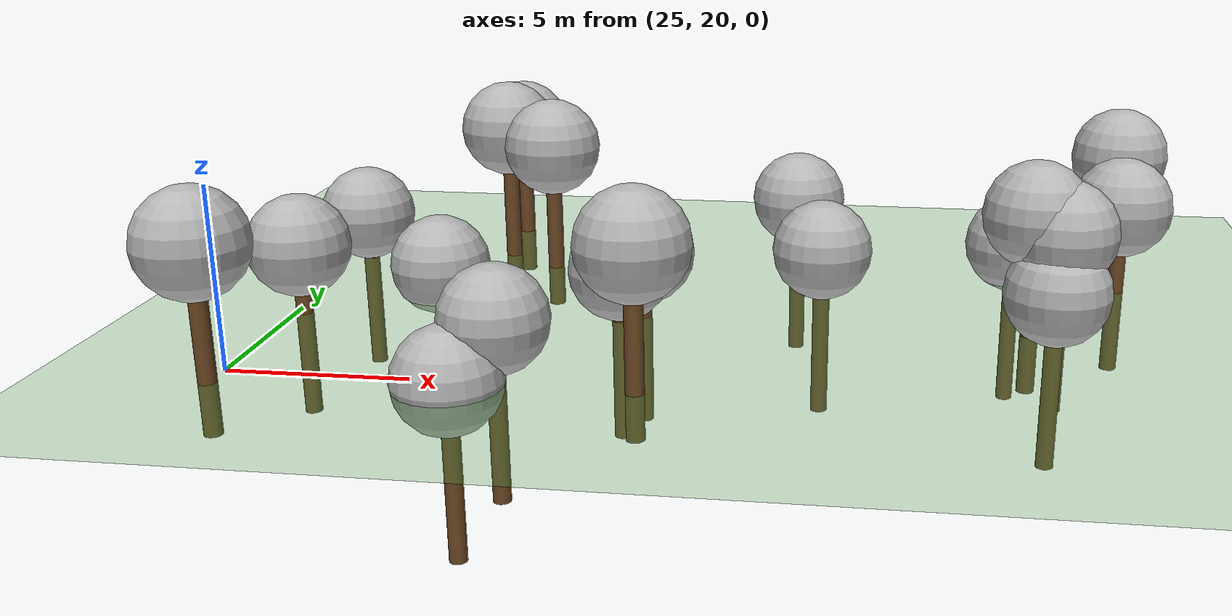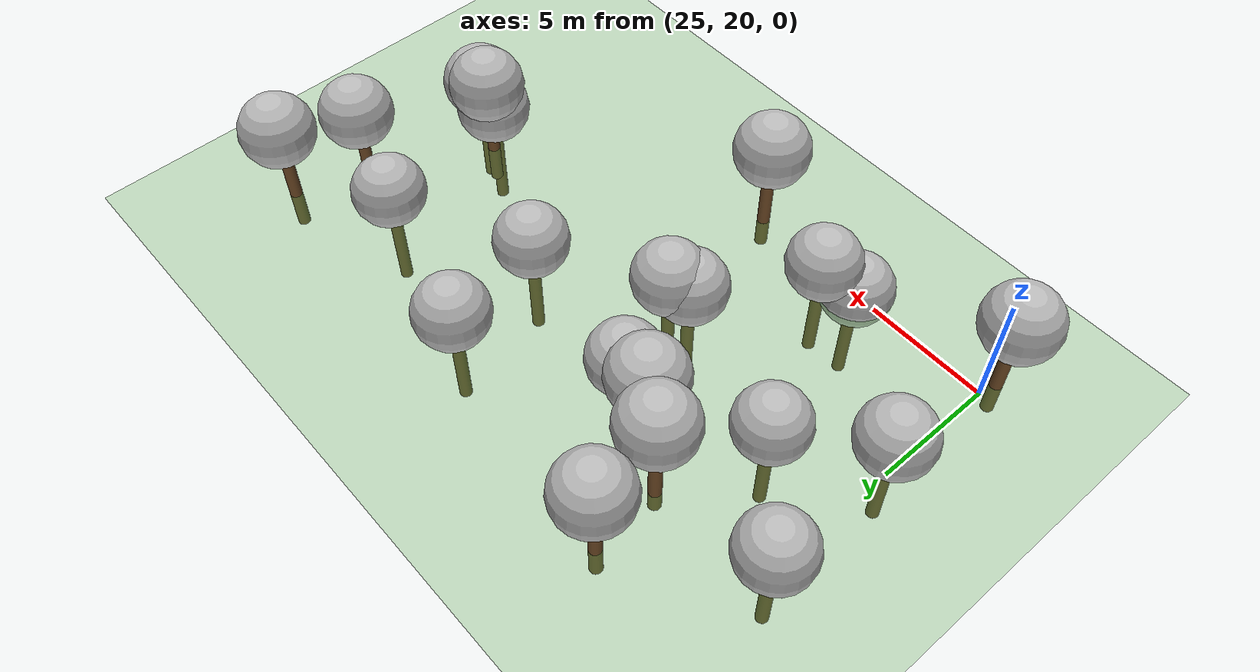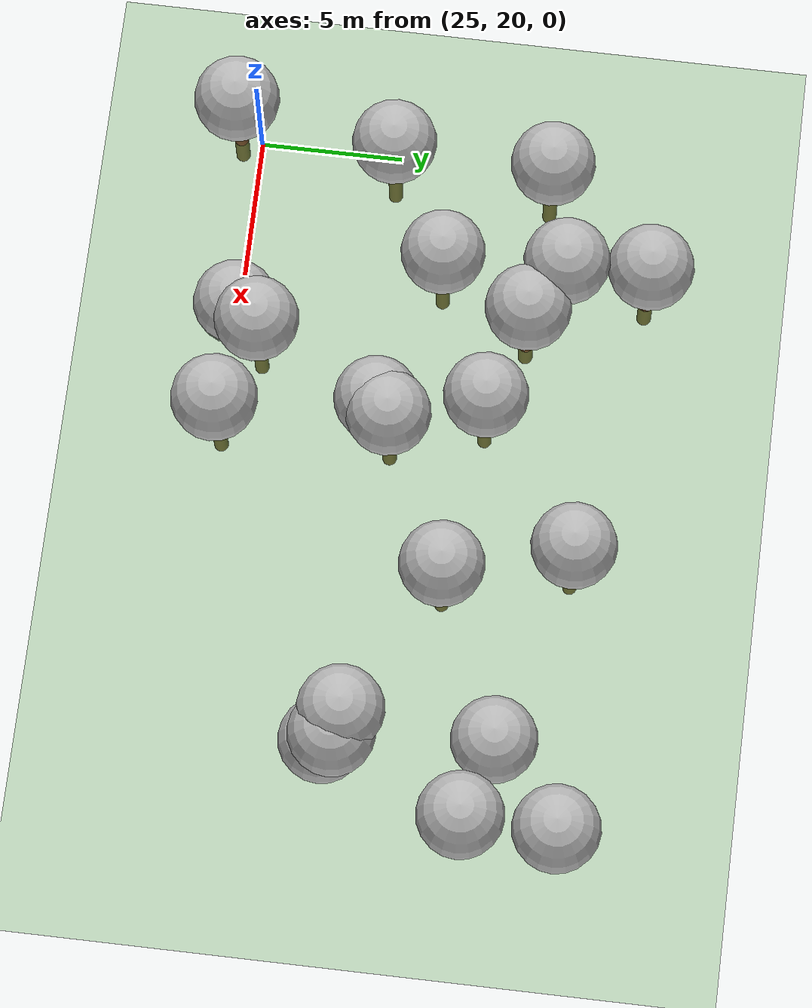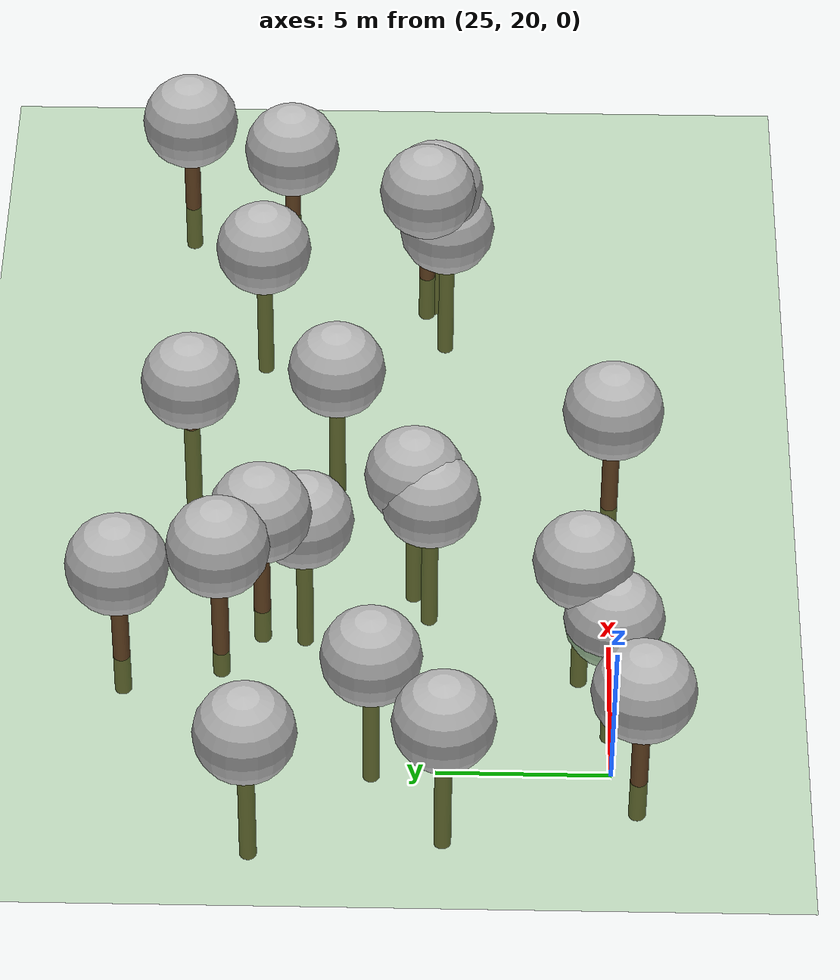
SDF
<sdf version="1.7">
 <world name="default">
  <model name="tree_simple402">
   <static>1</static>
   <link name="link">
    <pose>0 0 0.1 0 -0 0</pose>
    <collision name="collision_trunk">
     <pose>0 0 2 0 -0 0</pose>
     <geometry><cylinder><radius>0.25</radius><length>4</length></cylinder></geometry>
    </collision>
    <collision name="collision_treetop">
     <pose>0 0 5.2 0 -0 0</pose>
     <geometry><sphere><radius>1.5</radius></sphere></geometry>
    </collision>
    <visual name="trunk">
     <pose>0 0 2 0 -0 0</pose>
     <geometry><cylinder><radius>0.25</radius><length>4</length></cylinder></geometry>
     <material>
      <script>
       <uri>model://tree_simple/scripts</uri>
       <uri>model://tree_simple/materials/textures</uri>
       <name>TreeSimple/Trunk</name>
      </script>
     </material>
    </visual>
    <visual name="treetop">
     <pose>0 0 5.2 0 -0 0</pose>
     <geometry><sphere><radius>1.5</radius></sphere></geometry>
     <material>
      <script>
       <uri>model://tree_simple/scripts</uri>
       <uri>model://tree_simple/materials/textures</uri>
       <name>TreeSimple/Treetop</name>
      </script>
     </material>
    </visual>
   </link>
   <pose>46.153 25.5115 -1.80835 0 -0 0</pose>
  </model>
  <model name="tree_simple387">
   <static>1</static>
   <link name="link">
    <pose>0 0 0.1 0 -0 0</pose>
    <collision name="collision_trunk">
     <pose>0 0 2 0 -0 0</pose>
     <geometry><cylinder><radius>0.25</radius><length>4</length></cylinder></geometry>
    </collision>
    <collision name="collision_treetop">
     <pose>0 0 5.2 0 -0 0</pose>
     <geometry><sphere><radius>1.5</radius></sphere></geometry>
    </collision>
    <visual name="trunk">
     <pose>0 0 2 0 -0 0</pose>
     <geometry><cylinder><radius>0.25</radius><length>4</length></cylinder></geometry>
     <material>
      <script>
       <uri>model://tree_simple/scripts</uri>
       <uri>model://tree_simple/materials/textures</uri>
       <name>TreeSimple/Trunk</name>
      </script>
     </material>
    </visual>
    <visual name="treetop">
     <pose>0 0 5.2 0 -0 0</pose>
     <geometry><sphere><radius>1.5</radius></sphere></geometry>
     <material>
      <script>
       <uri>model://tree_simple/scripts</uri>
       <uri>model://tree_simple/materials/textures</uri>
       <name>TreeSimple/Treetop</name>
      </script>
     </material>
    </visual>
   </link>
   <pose>25.1585 24.7807 -3.27603 0 -0 0</pose>
  </model>
  <model name="tree_simple345">
   <static>1</static>
   <link name="link">
    <pose>0 0 0.1 0 -0 0</pose>
    <collision name="collision_trunk">
     <pose>0 0 2 0 -0 0</pose>
     <geometry><cylinder><radius>0.25</radius><length>4</length></cylinder></geometry>
    </collision>
    <collision name="collision_treetop">
     <pose>0 0 5.2 0 -0 0</pose>
     <geometry><sphere><radius>1.5</radius></sphere></geometry>
    </collision>
    <visual name="trunk">
     <pose>0 0 2 0 -0 0</pose>
     <geometry><cylinder><radius>0.25</radius><length>4</length></cylinder></geometry>
     <material>
      <script>
       <uri>model://tree_simple/scripts</uri>
       <uri>model://tree_simple/materials/textures</uri>
       <name>TreeSimple/Trunk</name>
      </script>
     </material>
    </visual>
    <visual name="treetop">
     <pose>0 0 5.2 0 -0 0</pose>
     <geometry><sphere><radius>1.5</radius></sphere></geometry>
     <material>
      <script>
       <uri>model://tree_simple/scripts</uri>
       <uri>model://tree_simple/materials/textures</uri>
       <name>TreeSimple/Treetop</name>
      </script>
     </material>
    </visual>
   </link>
   <pose>28.6629 26.9095 -4.37125 0 -0 0</pose>
  </model>
  <model name="tree_simple335">
   <static>1</static>
   <link name="link">
    <pose>0 0 0.1 0 -0 0</pose>
    <collision name="collision_trunk">
     <pose>0 0 2 0 -0 0</pose>
     <geometry><cylinder><radius>0.25</radius><length>4</length></cylinder></geometry>
    </collision>
    <collision name="collision_treetop">
     <pose>0 0 5.2 0 -0 0</pose>
     <geometry><sphere><radius>1.5</radius></sphere></geometry>
    </collision>
    <visual name="trunk">
     <pose>0 0 2 0 -0 0</pose>
     <geometry><cylinder><radius>0.25</radius><length>4</length></cylinder></geometry>
     <material>
      <script>
       <uri>model://tree_simple/scripts</uri>
       <uri>model://tree_simple/materials/textures</uri>
       <name>TreeSimple/Trunk</name>
      </script>
     </material>
    </visual>
    <visual name="treetop">
     <pose>0 0 5.2 0 -0 0</pose>
     <geometry><sphere><radius>1.5</radius></sphere></geometry>
     <material>
      <script>
       <uri>model://tree_simple/scripts</uri>
       <uri>model://tree_simple/materials/textures</uri>
       <name>TreeSimple/Treetop</name>
      </script>
     </material>
    </visual>
   </link>
   <pose>34.5368 25.2759 -3.77911 0 -0 0</pose>
  </model>
  <model name="tree_simple332">
   <static>1</static>
   <link name="link">
    <pose>0 0 0.1 0 -0 0</pose>
    <collision name="collision_trunk">
     <pose>0 0 2 0 -0 0</pose>
     <geometry><cylinder><radius>0.25</radius><length>4</length></cylinder></geometry>
    </collision>
    <collision name="collision_treetop">
     <pose>0 0 5.2 0 -0 0</pose>
     <geometry><sphere><radius>1.5</radius></sphere></geometry>
    </collision>
    <visual name="trunk">
     <pose>0 0 2 0 -0 0</pose>
     <geometry><cylinder><radius>0.25</radius><length>4</length></cylinder></geometry>
     <material>
      <script>
       <uri>model://tree_simple/scripts</uri>
       <uri>model://tree_simple/materials/textures</uri>
       <name>TreeSimple/Trunk</name>
      </script>
     </material>
    </visual>
    <visual name="treetop">
     <pose>0 0 5.2 0 -0 0</pose>
     <geometry><sphere><radius>1.5</radius></sphere></geometry>
     <material>
      <script>
       <uri>model://tree_simple/scripts</uri>
       <uri>model://tree_simple/materials/textures</uri>
       <name>TreeSimple/Treetop</name>
      </script>
     </material>
    </visual>
   </link>
   <pose>39.1289 32.6367 -3.44443 0 -0 0</pose>
  </model>
  <model name="tree_simple313">
   <static>1</static>
   <link name="link">
    <pose>0 0 0.1 0 -0 0</pose>
    <collision name="collision_trunk">
     <pose>0 0 2 0 -0 0</pose>
     <geometry><cylinder><radius>0.25</radius><length>4</length></cylinder></geometry>
    </collision>
    <collision name="collision_treetop">
     <pose>0 0 5.2 0 -0 0</pose>
     <geometry><sphere><radius>1.5</radius></sphere></geometry>
    </collision>
    <visual name="trunk">
     <pose>0 0 2 0 -0 0</pose>
     <geometry><cylinder><radius>0.25</radius><length>4</length></cylinder></geometry>
     <material>
      <script>
       <uri>model://tree_simple/scripts</uri>
       <uri>model://tree_simple/materials/textures</uri>
       <name>TreeSimple/Trunk</name>
      </script>
     </material>
    </visual>
    <visual name="treetop">
     <pose>0 0 5.2 0 -0 0</pose>
     <geometry><sphere><radius>1.5</radius></sphere></geometry>
     <material>
      <script>
       <uri>model://tree_simple/scripts</uri>
       <uri>model://tree_simple/materials/textures</uri>
       <name>TreeSimple/Treetop</name>
      </script>
     </material>
    </visual>
   </link>
   <pose>25.1047 30.4099 -3.82535 0 -0 0</pose>
  </model>
  <model name="tree_simple294">
   <static>1</static>
   <link name="link">
    <pose>0 0 0.1 0 -0 0</pose>
    <collision name="collision_trunk">
     <pose>0 0 2 0 -0 0</pose>
     <geometry><cylinder><radius>0.25</radius><length>4</length></cylinder></geometry>
    </collision>
    <collision name="collision_treetop">
     <pose>0 0 5.2 0 -0 0</pose>
     <geometry><sphere><radius>1.5</radius></sphere></geometry>
    </collision>
    <visual name="trunk">
     <pose>0 0 2 0 -0 0</pose>
     <geometry><cylinder><radius>0.25</radius><length>4</length></cylinder></geometry>
     <material>
      <script>
       <uri>model://tree_simple/scripts</uri>
       <uri>model://tree_simple/materials/textures</uri>
       <name>TreeSimple/Trunk</name>
      </script>
     </material>
    </visual>
    <visual name="treetop">
     <pose>0 0 5.2 0 -0 0</pose>
     <geometry><sphere><radius>1.5</radius></sphere></geometry>
     <material>
      <script>
       <uri>model://tree_simple/scripts</uri>
       <uri>model://tree_simple/materials/textures</uri>
       <name>TreeSimple/Treetop</name>
      </script>
     </material>
    </visual>
   </link>
   <pose>29.4568 34.1995 -1.54985 0 -0 0</pose>
  </model>
  <model name="tree_simple266">
   <static>1</static>
   <link name="link">
    <pose>0 0 0.1 0 -0 0</pose>
    <collision name="collision_trunk">
     <pose>0 0 2 0 -0 0</pose>
     <geometry><cylinder><radius>0.25</radius><length>4</length></cylinder></geometry>
    </collision>
    <collision name="collision_treetop">
     <pose>0 0 5.2 0 -0 0</pose>
     <geometry><sphere><radius>1.5</radius></sphere></geometry>
    </collision>
    <visual name="trunk">
     <pose>0 0 2 0 -0 0</pose>
     <geometry><cylinder><radius>0.25</radius><length>4</length></cylinder></geometry>
     <material>
      <script>
       <uri>model://tree_simple/scripts</uri>
       <uri>model://tree_simple/materials/textures</uri>
       <name>TreeSimple/Trunk</name>
      </script>
     </material>
    </visual>
    <visual name="treetop">
     <pose>0 0 5.2 0 -0 0</pose>
     <geometry><sphere><radius>1.5</radius></sphere></geometry>
     <material>
      <script>
       <uri>model://tree_simple/scripts</uri>
       <uri>model://tree_simple/materials/textures</uri>
       <name>TreeSimple/Treetop</name>
      </script>
     </material>
    </visual>
   </link>
   <pose>24.8758 19.2237 -1.59328 0 -0 0</pose>
  </model>
  <model name="tree_simple265">
   <static>1</static>
   <link name="link">
    <pose>0 0 0.1 0 -0 0</pose>
    <collision name="collision_trunk">
     <pose>0 0 2 0 -0 0</pose>
     <geometry><cylinder><radius>0.25</radius><length>4</length></cylinder></geometry>
    </collision>
    <collision name="collision_treetop">
     <pose>0 0 5.2 0 -0 0</pose>
     <geometry><sphere><radius>1.5</radius></sphere></geometry>
    </collision>
    <visual name="trunk">
     <pose>0 0 2 0 -0 0</pose>
     <geometry><cylinder><radius>0.25</radius><length>4</length></cylinder></geometry>
     <material>
      <script>
       <uri>model://tree_simple/scripts</uri>
       <uri>model://tree_simple/materials/textures</uri>
       <name>TreeSimple/Trunk</name>
      </script>
     </material>
    </visual>
    <visual name="treetop">
     <pose>0 0 5.2 0 -0 0</pose>
     <geometry><sphere><radius>1.5</radius></sphere></geometry>
     <material>
      <script>
       <uri>model://tree_simple/scripts</uri>
       <uri>model://tree_simple/materials/textures</uri>
       <name>TreeSimple/Treetop</name>
      </script>
     </material>
    </visual>
   </link>
   <pose>49.0906 29.8666 -2.66713 0 -0 0</pose>
  </model>
  <model name="tree_simple238">
   <static>1</static>
   <link name="link">
    <pose>0 0 0.1 0 -0 0</pose>
    <collision name="collision_trunk">
     <pose>0 0 2 0 -0 0</pose>
     <geometry><cylinder><radius>0.25</radius><length>4</length></cylinder></geometry>
    </collision>
    <collision name="collision_treetop">
     <pose>0 0 5.2 0 -0 0</pose>
     <geometry><sphere><radius>1.5</radius></sphere></geometry>
    </collision>
    <visual name="trunk">
     <pose>0 0 2 0 -0 0</pose>
     <geometry><cylinder><radius>0.25</radius><length>4</length></cylinder></geometry>
     <material>
      <script>
       <uri>model://tree_simple/scripts</uri>
       <uri>model://tree_simple/materials/textures</uri>
       <name>TreeSimple/Trunk</name>
      </script>
     </material>
    </visual>
    <visual name="treetop">
     <pose>0 0 5.2 0 -0 0</pose>
     <geometry><sphere><radius>1.5</radius></sphere></geometry>
     <material>
      <script>
       <uri>model://tree_simple/scripts</uri>
       <uri>model://tree_simple/materials/textures</uri>
       <name>TreeSimple/Treetop</name>
      </script>
     </material>
    </visual>
   </link>
   <pose>46.8869 25.2835 -2.26756 0 -0 0</pose>
  </model>
  <model name="tree_simple230">
   <static>1</static>
   <link name="link">
    <pose>0 0 0.1 0 -0 0</pose>
    <collision name="collision_trunk">
     <pose>0 0 2 0 -0 0</pose>
     <geometry><cylinder><radius>0.25</radius><length>4</length></cylinder></geometry>
    </collision>
    <collision name="collision_treetop">
     <pose>0 0 5.2 0 -0 0</pose>
     <geometry><sphere><radius>1.5</radius></sphere></geometry>
    </collision>
    <visual name="trunk">
     <pose>0 0 2 0 -0 0</pose>
     <geometry><cylinder><radius>0.25</radius><length>4</length></cylinder></geometry>
     <material>
      <script>
       <uri>model://tree_simple/scripts</uri>
       <uri>model://tree_simple/materials/textures</uri>
       <name>TreeSimple/Trunk</name>
      </script>
     </material>
    </visual>
    <visual name="treetop">
     <pose>0 0 5.2 0 -0 0</pose>
     <geometry><sphere><radius>1.5</radius></sphere></geometry>
     <material>
      <script>
       <uri>model://tree_simple/scripts</uri>
       <uri>model://tree_simple/materials/textures</uri>
       <name>TreeSimple/Treetop</name>
      </script>
     </material>
    </visual>
   </link>
   <pose>49.384 33.0887 -1.79699 0 -0 0</pose>
  </model>
  <model name="tree_simple219">
   <static>1</static>
   <link name="link">
    <pose>0 0 0.1 0 -0 0</pose>
    <collision name="collision_trunk">
     <pose>0 0 2 0 -0 0</pose>
     <geometry><cylinder><radius>0.25</radius><length>4</length></cylinder></geometry>
    </collision>
    <collision name="collision_treetop">
     <pose>0 0 5.2 0 -0 0</pose>
     <geometry><sphere><radius>1.5</radius></sphere></geometry>
    </collision>
    <visual name="trunk">
     <pose>0 0 2 0 -0 0</pose>
     <geometry><cylinder><radius>0.25</radius><length>4</length></cylinder></geometry>
     <material>
      <script>
       <uri>model://tree_simple/scripts</uri>
       <uri>model://tree_simple/materials/textures</uri>
       <name>TreeSimple/Trunk</name>
      </script>
     </material>
    </visual>
    <visual name="treetop">
     <pose>0 0 5.2 0 -0 0</pose>
     <geometry><sphere><radius>1.5</radius></sphere></geometry>
     <material>
      <script>
       <uri>model://tree_simple/scripts</uri>
       <uri>model://tree_simple/materials/textures</uri>
       <name>TreeSimple/Treetop</name>
      </script>
     </material>
    </visual>
   </link>
   <pose>32.0899 20.7584 -3.81736 0 -0 0</pose>
  </model>
  <model name="tree_simple216">
   <static>1</static>
   <link name="link">
    <pose>0 0 0.1 0 -0 0</pose>
    <collision name="collision_trunk">
     <pose>0 0 2 0 -0 0</pose>
     <geometry><cylinder><radius>0.25</radius><length>4</length></cylinder></geometry>
    </collision>
    <collision name="collision_treetop">
     <pose>0 0 5.2 0 -0 0</pose>
     <geometry><sphere><radius>1.5</radius></sphere></geometry>
    </collision>
    <visual name="trunk">
     <pose>0 0 2 0 -0 0</pose>
     <geometry><cylinder><radius>0.25</radius><length>4</length></cylinder></geometry>
     <material>
      <script>
       <uri>model://tree_simple/scripts</uri>
       <uri>model://tree_simple/materials/textures</uri>
       <name>TreeSimple/Trunk</name>
      </script>
     </material>
    </visual>
    <visual name="treetop">
     <pose>0 0 5.2 0 -0 0</pose>
     <geometry><sphere><radius>1.5</radius></sphere></geometry>
     <material>
      <script>
       <uri>model://tree_simple/scripts</uri>
       <uri>model://tree_simple/materials/textures</uri>
       <name>TreeSimple/Treetop</name>
      </script>
     </material>
    </visual>
   </link>
   <pose>46.7848 24.9057 -3.85549 0 -0 0</pose>
  </model>
  <model name="tree_simple190">
   <static>1</static>
   <link name="link">
    <pose>0 0 0.1 0 -0 0</pose>
    <collision name="collision_trunk">
     <pose>0 0 2 0 -0 0</pose>
     <geometry><cylinder><radius>0.25</radius><length>4</length></cylinder></geometry>
    </collision>
    <collision name="collision_treetop">
     <pose>0 0 5.2 0 -0 0</pose>
     <geometry><sphere><radius>1.5</radius></sphere></geometry>
    </collision>
    <visual name="trunk">
     <pose>0 0 2 0 -0 0</pose>
     <geometry><cylinder><radius>0.25</radius><length>4</length></cylinder></geometry>
     <material>
      <script>
       <uri>model://tree_simple/scripts</uri>
       <uri>model://tree_simple/materials/textures</uri>
       <name>TreeSimple/Trunk</name>
      </script>
     </material>
    </visual>
    <visual name="treetop">
     <pose>0 0 5.2 0 -0 0</pose>
     <geometry><sphere><radius>1.5</radius></sphere></geometry>
     <material>
      <script>
       <uri>model://tree_simple/scripts</uri>
       <uri>model://tree_simple/materials/textures</uri>
       <name>TreeSimple/Treetop</name>
      </script>
     </material>
    </visual>
   </link>
   <pose>33.8682 29.0193 -4.06375 0 -0 0</pose>
  </model>
  <model name="tree_simple188">
   <static>1</static>
   <link name="link">
    <pose>0 0 0.1 0 -0 0</pose>
    <collision name="collision_trunk">
     <pose>0 0 2 0 -0 0</pose>
     <geometry><cylinder><radius>0.25</radius><length>4</length></cylinder></geometry>
    </collision>
    <collision name="collision_treetop">
     <pose>0 0 5.2 0 -0 0</pose>
     <geometry><sphere><radius>1.5</radius></sphere></geometry>
    </collision>
    <visual name="trunk">
     <pose>0 0 2 0 -0 0</pose>
     <geometry><cylinder><radius>0.25</radius><length>4</length></cylinder></geometry>
     <material>
      <script>
       <uri>model://tree_simple/scripts</uri>
       <uri>model://tree_simple/materials/textures</uri>
       <name>TreeSimple/Trunk</name>
      </script>
     </material>
    </visual>
    <visual name="treetop">
     <pose>0 0 5.2 0 -0 0</pose>
     <geometry><sphere><radius>1.5</radius></sphere></geometry>
     <material>
      <script>
       <uri>model://tree_simple/scripts</uri>
       <uri>model://tree_simple/materials/textures</uri>
       <name>TreeSimple/Treetop</name>
      </script>
     </material>
    </visual>
   </link>
   <pose>31.0766 19.8232 -5.18682 0 -0 0</pose>
  </model>
  <model name="tree_simple150">
   <static>1</static>
   <link name="link">
    <pose>0 0 0.1 0 -0 0</pose>
    <collision name="collision_trunk">
     <pose>0 0 2 0 -0 0</pose>
     <geometry><cylinder><radius>0.25</radius><length>4</length></cylinder></geometry>
    </collision>
    <collision name="collision_treetop">
     <pose>0 0 5.2 0 -0 0</pose>
     <geometry><sphere><radius>1.5</radius></sphere></geometry>
    </collision>
    <visual name="trunk">
     <pose>0 0 2 0 -0 0</pose>
     <geometry><cylinder><radius>0.25</radius><length>4</length></cylinder></geometry>
     <material>
      <script>
       <uri>model://tree_simple/scripts</uri>
       <uri>model://tree_simple/materials/textures</uri>
       <name>TreeSimple/Trunk</name>
      </script>
     </material>
    </visual>
    <visual name="treetop">
     <pose>0 0 5.2 0 -0 0</pose>
     <geometry><sphere><radius>1.5</radius></sphere></geometry>
     <material>
      <script>
       <uri>model://tree_simple/scripts</uri>
       <uri>model://tree_simple/materials/textures</uri>
       <name>TreeSimple/Treetop</name>
      </script>
     </material>
    </visual>
   </link>
   <pose>40.1656 28.2074 -3.86341 0 -0 0</pose>
  </model>
  <model name="tree_simple131">
   <static>1</static>
   <link name="link">
    <pose>0 0 0.1 0 -0 0</pose>
    <collision name="collision_trunk">
     <pose>0 0 2 0 -0 0</pose>
     <geometry><cylinder><radius>0.25</radius><length>4</length></cylinder></geometry>
    </collision>
    <collision name="collision_treetop">
     <pose>0 0 5.2 0 -0 0</pose>
     <geometry><sphere><radius>1.5</radius></sphere></geometry>
    </collision>
    <visual name="trunk">
     <pose>0 0 2 0 -0 0</pose>
     <geometry><cylinder><radius>0.25</radius><length>4</length></cylinder></geometry>
     <material>
      <script>
       <uri>model://tree_simple/scripts</uri>
       <uri>model://tree_simple/materials/textures</uri>
       <name>TreeSimple/Trunk</name>
      </script>
     </material>
    </visual>
    <visual name="treetop">
     <pose>0 0 5.2 0 -0 0</pose>
     <geometry><sphere><radius>1.5</radius></sphere></geometry>
     <material>
      <script>
       <uri>model://tree_simple/scripts</uri>
       <uri>model://tree_simple/materials/textures</uri>
       <name>TreeSimple/Treetop</name>
      </script>
     </material>
    </visual>
   </link>
   <pose>46.0345 30.6775 -4.15508 0 -0 0</pose>
  </model>
  <model name="tree_simple97">
   <static>1</static>
   <link name="link">
    <pose>0 0 0.1 0 -0 0</pose>
    <collision name="collision_trunk">
     <pose>0 0 2 0 -0 0</pose>
     <geometry><cylinder><radius>0.25</radius><length>4</length></cylinder></geometry>
    </collision>
    <collision name="collision_treetop">
     <pose>0 0 5.2 0 -0 0</pose>
     <geometry><sphere><radius>1.5</radius></sphere></geometry>
    </collision>
    <visual name="trunk">
     <pose>0 0 2 0 -0 0</pose>
     <geometry><cylinder><radius>0.25</radius><length>4</length></cylinder></geometry>
     <material>
      <script>
       <uri>model://tree_simple/scripts</uri>
       <uri>model://tree_simple/materials/textures</uri>
       <name>TreeSimple/Trunk</name>
      </script>
     </material>
    </visual>
    <visual name="treetop">
     <pose>0 0 5.2 0 -0 0</pose>
     <geometry><sphere><radius>1.5</radius></sphere></geometry>
     <material>
      <script>
       <uri>model://tree_simple/scripts</uri>
       <uri>model://tree_simple/materials/textures</uri>
       <name>TreeSimple/Treetop</name>
      </script>
     </material>
    </visual>
   </link>
   <pose>31.4552 30.1711 -1.37931 0 -0 0</pose>
  </model>
  <model name="tree_simple47">
   <static>1</static>
   <link name="link">
    <pose>0 0 0.1 0 -0 0</pose>
    <collision name="collision_trunk">
     <pose>0 0 2 0 -0 0</pose>
     <geometry><cylinder><radius>0.25</radius><length>4</length></cylinder></geometry>
    </collision>
    <collision name="collision_treetop">
     <pose>0 0 5.2 0 -0 0</pose>
     <geometry><sphere><radius>1.5</radius></sphere></geometry>
    </collision>
    <visual name="trunk">
     <pose>0 0 2 0 -0 0</pose>
     <geometry><cylinder><radius>0.25</radius><length>4</length></cylinder></geometry>
     <material>
      <script>
       <uri>model://tree_simple/scripts</uri>
       <uri>model://tree_simple/materials/textures</uri>
       <name>TreeSimple/Trunk</name>
      </script>
     </material>
    </visual>
    <visual name="treetop">
     <pose>0 0 5.2 0 -0 0</pose>
     <geometry><sphere><radius>1.5</radius></sphere></geometry>
     <material>
      <script>
       <uri>model://tree_simple/scripts</uri>
       <uri>model://tree_simple/materials/textures</uri>
       <name>TreeSimple/Treetop</name>
      </script>
     </material>
    </visual>
   </link>
   <pose>29.7449 31.311 -1.064 0 -0 0</pose>
  </model>
  <model name="tree_simple46">
   <static>1</static>
   <link name="link">
    <pose>0 0 0.1 0 -0 0</pose>
    <collision name="collision_trunk">
     <pose>0 0 2 0 -0 0</pose>
     <geometry><cylinder><radius>0.25</radius><length>4</length></cylinder></geometry>
    </collision>
    <collision name="collision_treetop">
     <pose>0 0 5.2 0 -0 0</pose>
     <geometry><sphere><radius>1.5</radius></sphere></geometry>
    </collision>
    <visual name="trunk">
     <pose>0 0 2 0 -0 0</pose>
     <geometry><cylinder><radius>0.25</radius><length>4</length></cylinder></geometry>
     <material>
      <script>
       <uri>model://tree_simple/scripts</uri>
       <uri>model://tree_simple/materials/textures</uri>
       <name>TreeSimple/Trunk</name>
      </script>
     </material>
    </visual>
    <visual name="treetop">
     <pose>0 0 5.2 0 -0 0</pose>
     <geometry><sphere><radius>1.5</radius></sphere></geometry>
     <material>
      <script>
       <uri>model://tree_simple/scripts</uri>
       <uri>model://tree_simple/materials/textures</uri>
       <name>TreeSimple/Treetop</name>
      </script>
     </material>
    </visual>
   </link>
   <pose>35.9377 19.91 -1.40339 0 -0 0</pose>
  </model>
  <model name="tree_simple44">
   <static>1</static>
   <link name="link">
    <pose>0 0 0.1 0 -0 0</pose>
    <collision name="collision_trunk">
     <pose>0 0 2 0 -0 0</pose>
     <geometry><cylinder><radius>0.25</radius><length>4</length></cylinder></geometry>
    </collision>
    <collision name="collision_treetop">
     <pose>0 0 5.2 0 -0 0</pose>
     <geometry><sphere><radius>1.5</radius></sphere></geometry>
    </collision>
    <visual name="trunk">
     <pose>0 0 2 0 -0 0</pose>
     <geometry><cylinder><radius>0.25</radius><length>4</length></cylinder></geometry>
     <material>
      <script>
       <uri>model://tree_simple/scripts</uri>
       <uri>model://tree_simple/materials/textures</uri>
       <name>TreeSimple/Trunk</name>
      </script>
     </material>
    </visual>
    <visual name="treetop">
     <pose>0 0 5.2 0 -0 0</pose>
     <geometry><sphere><radius>1.5</radius></sphere></geometry>
     <material>
      <script>
       <uri>model://tree_simple/scripts</uri>
       <uri>model://tree_simple/materials/textures</uri>
       <name>TreeSimple/Treetop</name>
      </script>
     </material>
    </visual>
   </link>
   <pose>35.1254 25.7534 -3.38492 0 -0 0</pose>
  </model>
  <model name="ground_plane">
   <static>1</static>
   <link name="link">
    <collision name="collision">
     <geometry><plane><normal>0 0 1</normal><size>250 250</size></plane></geometry>
     <surface><friction><ode><mu>1</mu><mu2>1</mu2></ode></friction></surface>
    </collision>
    <visual name="grass">
     <cast_shadows>0</cast_shadows>
     <geometry><plane><normal>0 0 1</normal><size>150 250</size></plane></geometry>
     <material>
      <script><uri>file://media/materials/scripts/Gazebo.material</uri><name>Gazebo/Grass</name></script>
     </material>
    </visual>
   </link>
  </model>
 </world>
</sdf>
